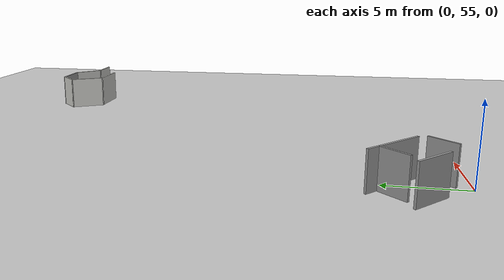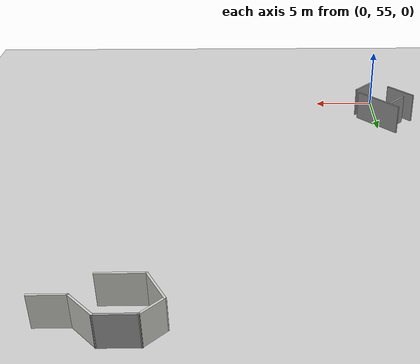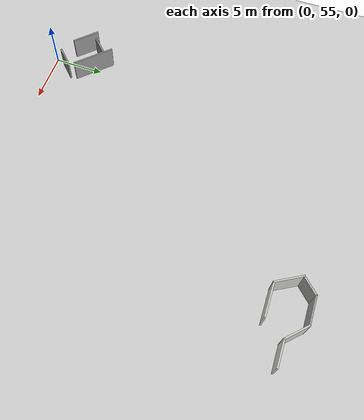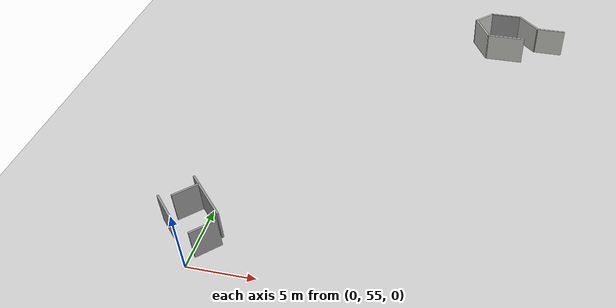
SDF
<sdf version="1.6">
 <world name="default">
  <model name="ground_plane">
   <pose>50 50 0 0 -0 0</pose>
   <static>1</static>
   <link name="link">
    <collision name="collision">
     <geometry><plane><normal>0 0 1</normal><size>100 100</size></plane></geometry>
     <surface><friction><ode><mu>100</mu><mu2>50</mu2></ode></friction></surface>
    </collision>
    <visual name="visual">
     <cast_shadows>0</cast_shadows>
     <geometry><plane><normal>0 0 1</normal><size>100 100</size></plane></geometry>
     <material>
      <script><uri>file://media/materials/scripts/gazebo.material</uri><name>Gazebo/Grey</name></script>
     </material>
    </visual>
   </link>
  </model>
  <model name="maze_1_0">
   <pose>55.5762 81.9377 0 0 -0 3.14</pose>
   <link name="Wall_195">
    <collision name="Wall_195_Collision">
     <geometry><box><size>2.5 0.15 2.5</size></box></geometry>
     <pose>0 0 1.25 0 -0 0</pose>
    </collision>
    <visual name="Wall_195_Visual">
     <pose>0 0 1.25 0 -0 0</pose>
     <geometry><box><size>2.5 0.15 2.5</size></box></geometry>
     <material>
      <script><uri>file://media/materials/scripts/gazebo.material</uri><name>Gazebo/CeilingTiled</name></script>
      <ambient>1 1 1 1</ambient>
     </material>
     <meta><layer>0</layer></meta>
    </visual>
    <pose>32.7582 -2.74465 0 0 -0 0</pose>
   </link>
   <link name="Wall_196">
    <collision name="Wall_196_Collision">
     <geometry><box><size>2.5 0.15 2.5</size></box></geometry>
     <pose>0 0 1.25 0 -0 0</pose>
    </collision>
    <visual name="Wall_196_Visual">
     <pose>0 0 1.25 0 -0 0</pose>
     <geometry><box><size>2.5 0.15 2.5</size></box></geometry>
     <material>
      <script><uri>file://media/materials/scripts/gazebo.material</uri><name>Gazebo/CeilingTiled</name></script>
      <ambient>1 1 1 1</ambient>
     </material>
     <meta><layer>0</layer></meta>
    </visual>
    <pose>34.764 -3.5755 0 0 -0 -0.785398</pose>
   </link>
   <link name="Wall_197">
    <collision name="Wall_197_Collision">
     <geometry><box><size>2.75 0.15 2.5</size></box></geometry>
     <pose>0 0 1.25 0 -0 0</pose>
    </collision>
    <visual name="Wall_197_Visual">
     <pose>0 0 1.25 0 -0 0</pose>
     <geometry><box><size>2.75 0.15 2.5</size></box></geometry>
     <material>
      <script><uri>file://media/materials/scripts/gazebo.material</uri><name>Gazebo/Grey</name></script>
      <ambient>1 1 1 1</ambient>
     </material>
     <meta><layer>0</layer></meta>
    </visual>
    <pose>36.8949 -4.40635 0 0 -0 0</pose>
   </link>
   <link name="Wall_198">
    <collision name="Wall_198_Collision">
     <geometry><box><size>2 0.15 2.5</size></box></geometry>
     <pose>0 0 1.25 0 -0 0</pose>
    </collision>
    <visual name="Wall_198_Visual">
     <pose>0 0 1.25 0 -0 0</pose>
     <geometry><box><size>2 0.15 2.5</size></box></geometry>
     <material>
      <script><uri>file://media/materials/scripts/gazebo.material</uri><name>Gazebo/CeilingTiled</name></script>
      <ambient>1 1 1 1</ambient>
     </material>
     <meta><layer>0</layer></meta>
    </visual>
    <pose>38.849 -3.75227 0 0 -0 0.785398</pose>
   </link>
   <link name="Wall_199">
    <collision name="Wall_199_Collision">
     <geometry><box><size>2.75 0.15 2.5</size></box></geometry>
     <pose>0 0 1.25 0 -0 0</pose>
    </collision>
    <visual name="Wall_199_Visual">
     <pose>0 0 1.25 0 -0 0</pose>
     <geometry><box><size>2.75 0.15 2.5</size></box></geometry>
     <material>
      <script><uri>file://media/materials/scripts/gazebo.material</uri><name>Gazebo/CeilingTiled</name></script>
      <ambient>1 1 1 1</ambient>
     </material>
     <meta><layer>0</layer></meta>
    </visual>
    <pose>38.853 -1.97237 0 0 -0 2.0944</pose>
   </link>
   <link name="Wall_200">
    <collision name="Wall_200_Collision">
     <geometry><box><size>3.25 0.15 2.5</size></box></geometry>
     <pose>0 0 1.25 0 -0 0</pose>
    </collision>
    <visual name="Wall_200_Visual">
     <pose>0 0 1.25 0 -0 0</pose>
     <geometry><box><size>3.25 0.15 2.5</size></box></geometry>
     <material>
      <script><uri>file://media/materials/scripts/gazebo.material</uri><name>Gazebo/CeilingTiled</name></script>
      <ambient>1 1 1 1</ambient>
     </material>
     <meta><layer>0</layer></meta>
    </visual>
    <pose>36.653 -0.846533 0 0 -0 3.14159</pose>
   </link>
   <static>1</static>
  </model>
  <model name="obs2_6">
   <pose>-0.722591 58.3796 0 0 -0 0</pose>
   <link name="Wall_0">
    <collision name="Wall_0_Collision">
     <geometry><box><size>2 0.15 2.5</size></box></geometry>
     <pose>0 0 1.25 0 -0 0</pose>
    </collision>
    <visual name="Wall_0_Visual">
     <pose>0 0 1.25 0 -0 0</pose>
     <geometry><box><size>2 0.15 2.5</size></box></geometry>
     <material>
      <script><uri>file://media/materials/scripts/gazebo.material</uri><name>Gazebo/Grey</name></script>
      <ambient>1 1 1 1</ambient>
     </material>
    </visual>
    <pose>-0.796332 1.10862 0 0 -0 0.785398</pose>
   </link>
   <link name="Wall_2">
    <collision name="Wall_2_Collision">
     <geometry><box><size>4.25 0.15 2.5</size></box></geometry>
     <pose>0 0 1.25 0 -0 0</pose>
    </collision>
    <visual name="Wall_2_Visual">
     <pose>0 0 1.25 0 -0 0</pose>
     <geometry><box><size>4.25 0.15 2.5</size></box></geometry>
     <material>
      <script><uri>file://media/materials/scripts/gazebo.material</uri><name>Gazebo/Grey</name></script>
      <ambient>1 1 1 1</ambient>
     </material>
    </visual>
    <pose>0.773928 0.982661 0 0 0 -0.785398</pose>
   </link>
   <link name="Wall_4">
    <collision name="Wall_4_Collision">
     <geometry><box><size>2.75 0.15 2.5</size></box></geometry>
     <pose>0 0 1.25 0 -0 0</pose>
    </collision>
    <visual name="Wall_4_Visual">
     <pose>0 0 1.25 0 -0 0</pose>
     <geometry><box><size>2.75 0.15 2.5</size></box></geometry>
     <material>
      <script><uri>file://media/materials/scripts/gazebo.material</uri><name>Gazebo/Grey</name></script>
      <ambient>1 1 1 1</ambient>
     </material>
    </visual>
    <pose>-1.45556 -0.740711 0 0 0 -0.785398</pose>
   </link>
   <link name="Wall_6">
    <collision name="Wall_6_Collision">
     <geometry><box><size>2 0.15 2.5</size></box></geometry>
     <pose>0 0 1.25 0 -0 0</pose>
    </collision>
    <visual name="Wall_6_Visual">
     <pose>0 0 1.25 0 -0 0</pose>
     <geometry><box><size>2 0.15 2.5</size></box></geometry>
     <material>
      <script><uri>file://media/materials/scripts/gazebo.material</uri><name>Gazebo/Grey</name></script>
      <ambient>1 1 1 1</ambient>
     </material>
    </visual>
    <pose>1.72073 -1.77816 0 0 -0 0.785398</pose>
   </link>
   <static>1</static>
  </model>
 </world>
</sdf>
